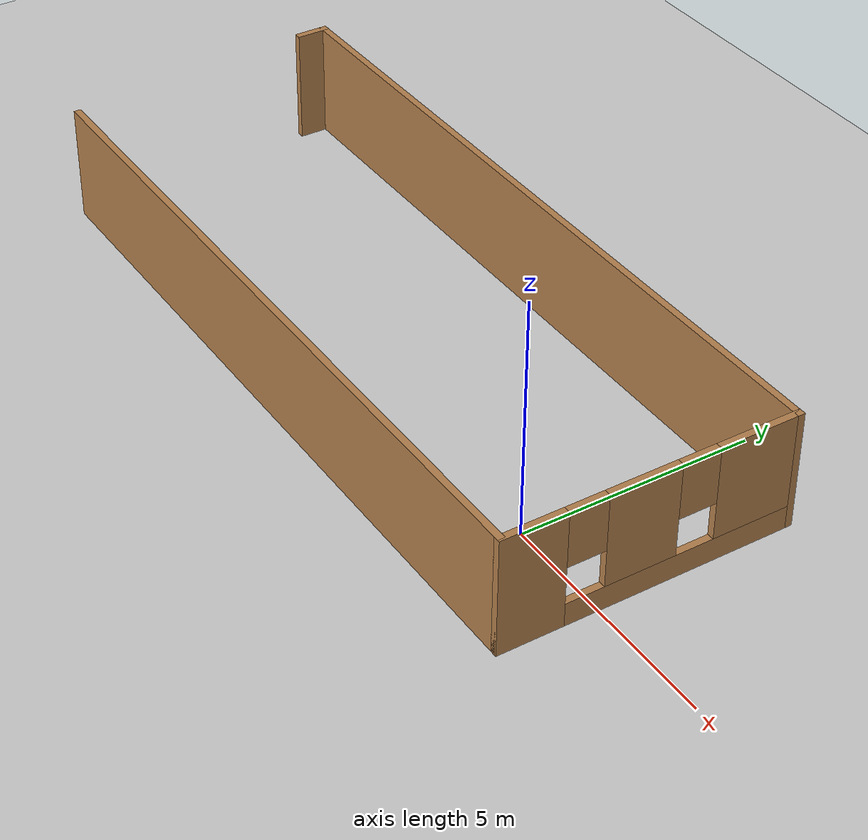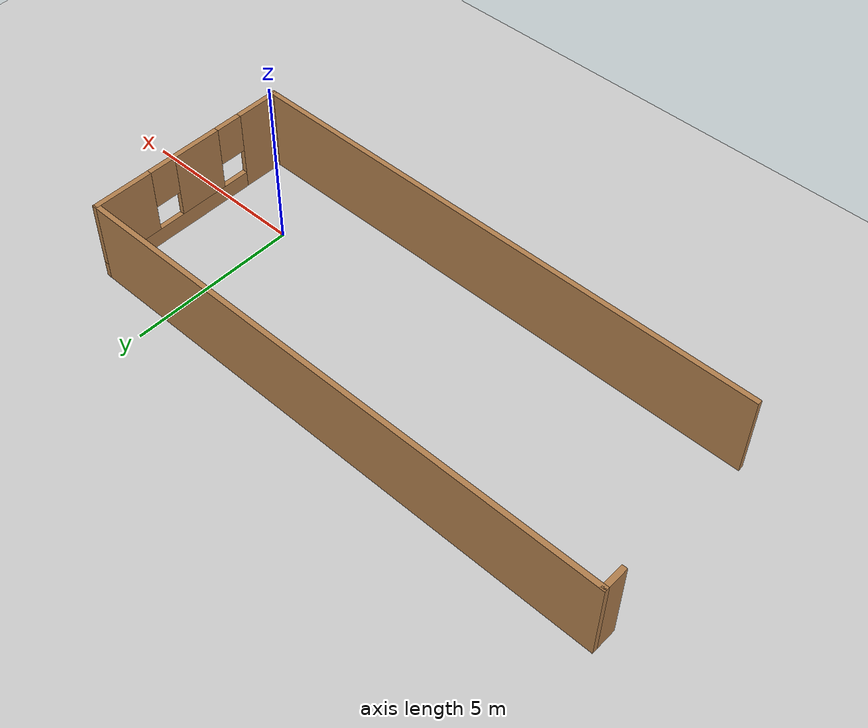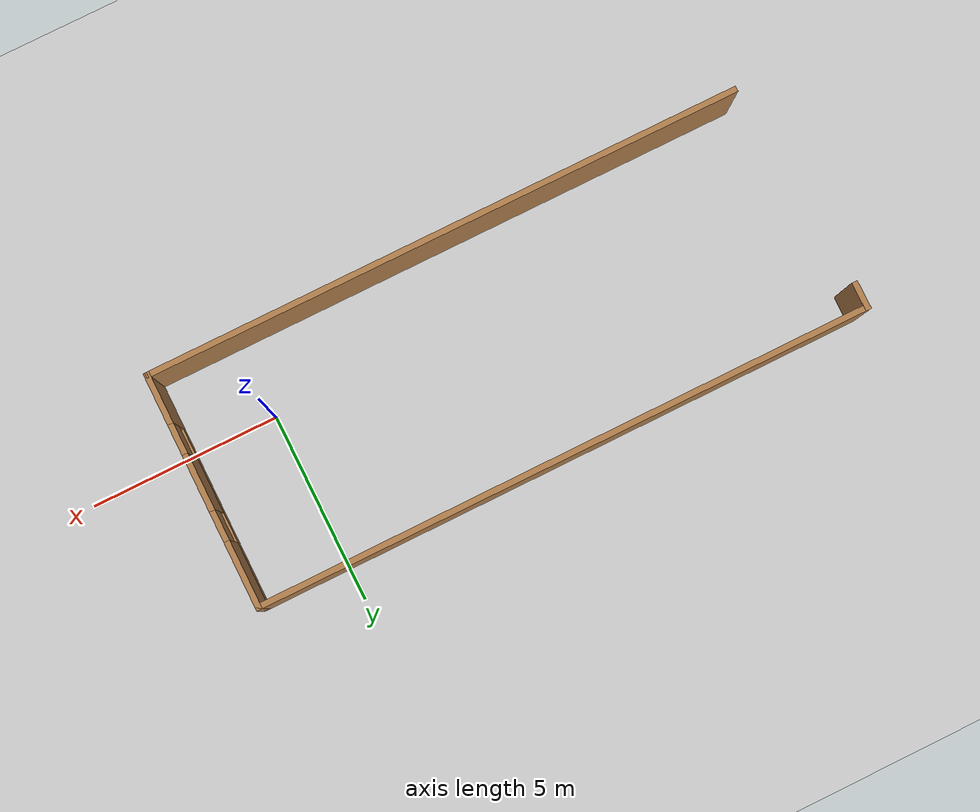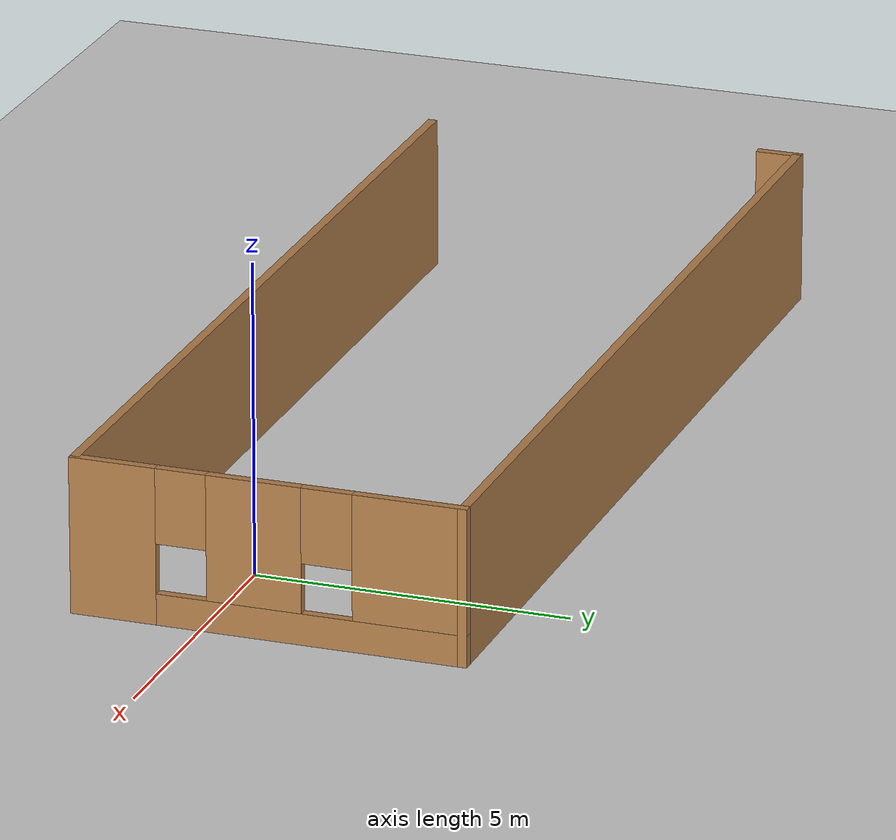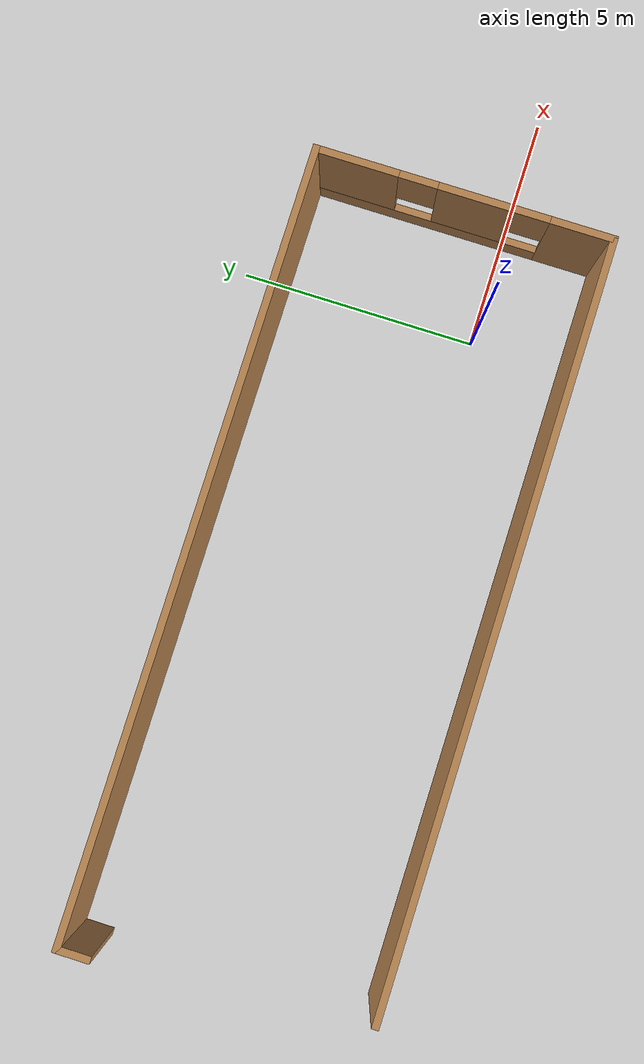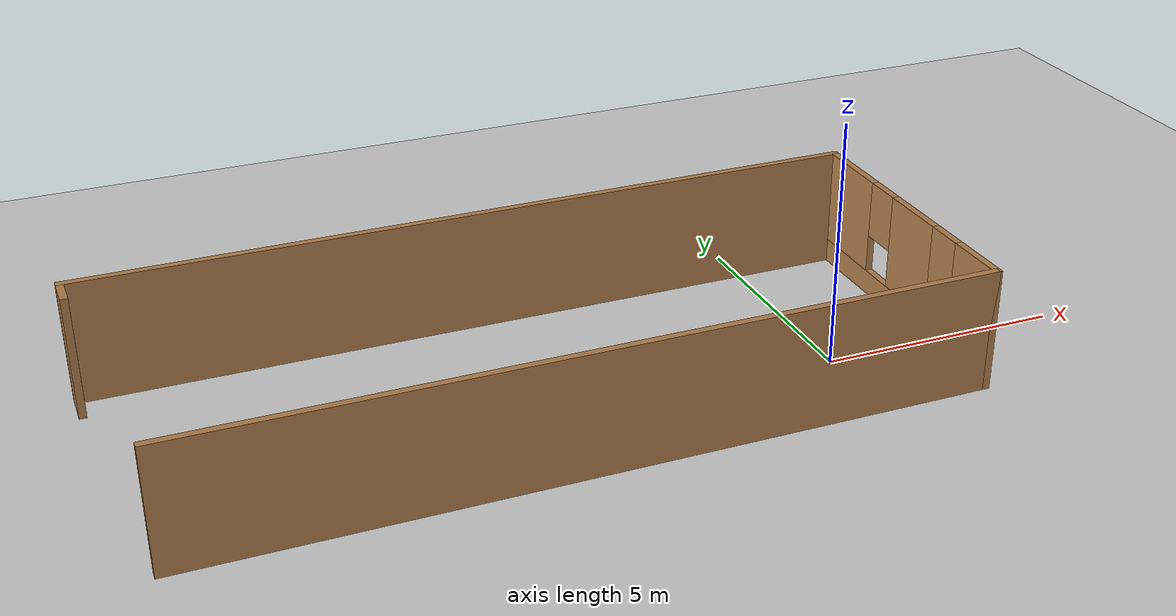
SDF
<sdf version="1.7">
 <world name="default">
  <light name="sun" type="directional">
   <pose>0 0 10 0 -0 0</pose>
   <diffuse>0.8 0.8 0.8 1</diffuse>
   <specular>0.2 0.2 0.2 1</specular>
   <attenuation>
    <range>1000</range>
    <constant>0.9</constant>
    <linear>0.01</linear>
    <quadratic>0.001</quadratic>
   </attenuation>
   <direction>-0.5 0.1 -0.9</direction>
   <spot><inner_angle>0</inner_angle><outer_angle>0</outer_angle><falloff>0</falloff></spot>
  </light>
  <model name="ground_plane">
   <static>1</static>
   <link name="link">
    <collision name="collision">
     <geometry><plane><normal>0 0 1</normal><size>100 100</size></plane></geometry>
     <surface>
      <contact><collide_bitmask>65535</collide_bitmask></contact>
      <friction><ode><mu>100</mu><mu2>50</mu2></ode></friction>
     </surface>
    </collision>
    <visual name="visual">
     <cast_shadows>0</cast_shadows>
     <geometry><plane><normal>0 0 1</normal><size>100 100</size></plane></geometry>
     <material>
      <script><uri>file://media/materials/scripts/gazebo.material</uri><name>Gazebo/Grey</name></script>
     </material>
    </visual>
   </link>
  </model>
  <plugin name="set_entity_state" filename="libgazebo_ros_set_entity_state.so"/>
  <plugin name="gazebo_link_attacher" filename="libgazebo_link_attacher.so"/>
  <plugin name="gazebo_ros_api_plugin" filename="libgazebo_ros_api_plugin.so"/>
  <plugin name="gazebo_ros_state" filename="libgazebo_ros_state.so"/>
  <gravity>0 0 -9.8</gravity>
  <magnetic_field>6e-06 2.3e-05 -4.2e-05</magnetic_field>
  <atmosphere type="adiabatic"/>
  <physics type="ode">
   <max_step_size>0.001</max_step_size>
   <real_time_factor>1</real_time_factor>
   <real_time_update_rate>1000</real_time_update_rate>
  </physics>
  <scene><ambient>0.4 0.4 0.4 1</ambient><background>0.7 0.7 0.7 1</background><shadows>1</shadows></scene>
  <audio><device>default</device></audio>
  <spherical_coordinates>
   <surface_model>EARTH_WGS84</surface_model>
   <latitude_deg>0</latitude_deg>
   <longitude_deg>0</longitude_deg>
   <elevation>0</elevation>
   <heading_deg>0</heading_deg>
  </spherical_coordinates>
  <model name="Untitled">
   <pose>-5.81812 1.06238 0 0 -0 0</pose>
   <link name="Wall_0">
    <collision name="Wall_0_Collision">
     <geometry><box><size>15.75 0.15 2.5</size></box></geometry>
     <pose>0 0 1.25 0 -0 0</pose>
    </collision>
    <visual name="Wall_0_Visual">
     <pose>0 0 1.25 0 -0 0</pose>
     <geometry><box><size>15.75 0.15 2.5</size></box></geometry>
     <material>
      <script><uri>file://media/materials/scripts/gazebo.material</uri><name>Gazebo/Wood</name></script>
      <ambient>1 1 1 1</ambient>
     </material>
     <meta><layer>0</layer></meta>
    </visual>
    <pose>0.209773 -3.05 0 0 -0 0</pose>
   </link>
   <link name="Wall_2">
    <pose>8.05 0 0 0 -0 1.5708</pose>
    <visual name="Wall_2_Visual_0">
     <pose>-2.44124 0 1.25 0 -0 0</pose>
     <geometry><box><size>1.36752 0.15 2.5</size></box></geometry>
     <material>
      <script><uri>file://media/materials/scripts/gazebo.material</uri><name>Gazebo/Wood</name></script>
      <ambient>1 1 1 1</ambient>
     </material>
     <meta><layer>0</layer></meta>
    </visual>
    <collision name="Wall_2_Collision_0">
     <geometry><box><size>1.36752 0.15 2.5</size></box></geometry>
     <pose>-2.44124 0 1.25 0 -0 0</pose>
    </collision>
    <visual name="Wall_2_Visual_1">
     <pose>0.683758 0 0.25 0 -0 0</pose>
     <geometry><box><size>4.88248 0.15 0.5</size></box></geometry>
     <material>
      <script><uri>file://media/materials/scripts/gazebo.material</uri><name>Gazebo/Wood</name></script>
      <ambient>1 1 1 1</ambient>
     </material>
     <meta><layer>0</layer></meta>
    </visual>
    <collision name="Wall_2_Collision_1">
     <geometry><box><size>4.88248 0.15 0.5</size></box></geometry>
     <pose>0.683758 0 0.25 0 -0 0</pose>
    </collision>
    <visual name="Wall_2_Visual_2">
     <pose>-0.21101 0 1.5 0 -0 0</pose>
     <geometry><box><size>1.49295 0.15 2</size></box></geometry>
     <material>
      <script><uri>file://media/materials/scripts/gazebo.material</uri><name>Gazebo/Wood</name></script>
      <ambient>1 1 1 1</ambient>
     </material>
     <meta><layer>0</layer></meta>
    </visual>
    <collision name="Wall_2_Collision_2">
     <geometry><box><size>1.49295 0.15 2</size></box></geometry>
     <pose>-0.21101 0 1.5 0 -0 0</pose>
    </collision>
    <visual name="Wall_2_Visual_3">
     <pose>2.23023 0 1.5 0 -0 0</pose>
     <geometry><box><size>1.78954 0.15 2</size></box></geometry>
     <material>
      <script><uri>file://media/materials/scripts/gazebo.material</uri><name>Gazebo/Wood</name></script>
      <ambient>1 1 1 1</ambient>
     </material>
     <meta><layer>0</layer></meta>
    </visual>
    <collision name="Wall_2_Collision_3">
     <geometry><box><size>1.78954 0.15 2</size></box></geometry>
     <pose>2.23023 0 1.5 0 -0 0</pose>
    </collision>
    <visual name="Wall_2_Visual_4">
     <pose>-1.35748 0 1.9 0 -0 0</pose>
     <geometry><box><size>0.8 0.15 1.2</size></box></geometry>
     <material>
      <script><uri>file://media/materials/scripts/gazebo.material</uri><name>Gazebo/Wood</name></script>
      <ambient>1 1 1 1</ambient>
     </material>
     <meta><layer>0</layer></meta>
    </visual>
    <collision name="Wall_2_Collision_4">
     <geometry><box><size>0.8 0.15 1.2</size></box></geometry>
     <pose>-1.35748 0 1.9 0 -0 0</pose>
    </collision>
    <visual name="Wall_2_Visual_5">
     <pose>0.935463 0 1.9 0 -0 0</pose>
     <geometry><box><size>0.8 0.15 1.2</size></box></geometry>
     <material>
      <script><uri>file://media/materials/scripts/gazebo.material</uri><name>Gazebo/Wood</name></script>
      <ambient>1 1 1 1</ambient>
     </material>
     <meta><layer>0</layer></meta>
    </visual>
    <collision name="Wall_2_Collision_5">
     <geometry><box><size>0.8 0.15 1.2</size></box></geometry>
     <pose>0.935463 0 1.9 0 -0 0</pose>
    </collision>
   </link>
   <link name="Wall_5">
    <collision name="Wall_5_Collision">
     <geometry><box><size>16.25 0.15 2.5</size></box></geometry>
     <pose>0 0 1.25 0 -0 0</pose>
    </collision>
    <visual name="Wall_5_Visual">
     <pose>0 0 1.25 0 -0 0</pose>
     <geometry><box><size>16.25 0.15 2.5</size></box></geometry>
     <material>
      <script><uri>file://media/materials/scripts/gazebo.material</uri><name>Gazebo/Wood</name></script>
      <ambient>1 1 1 1</ambient>
     </material>
     <meta><layer>0</layer></meta>
    </visual>
    <pose>0 3.05 0 0 -0 3.14159</pose>
   </link>
   <link name="Wall_7">
    <collision name="Wall_7_Collision">
     <geometry><box><size>0.75 0.15 2.5</size></box></geometry>
     <pose>0 0 1.25 0 -0 0</pose>
    </collision>
    <visual name="Wall_7_Visual">
     <pose>0 0 1.25 0 -0 0</pose>
     <geometry><box><size>0.75 0.15 2.5</size></box></geometry>
     <material>
      <script><uri>file://media/materials/scripts/gazebo.material</uri><name>Gazebo/Wood</name></script>
      <ambient>1 1 1 1</ambient>
     </material>
     <meta><layer>0</layer></meta>
    </visual>
    <pose>-8.05 2.75 0 0 -0 -1.5708</pose>
   </link>
   <static>1</static>
  </model>
 </world>
</sdf>
